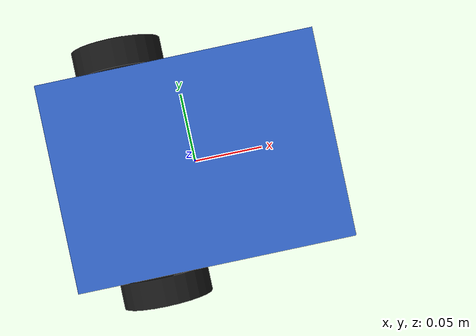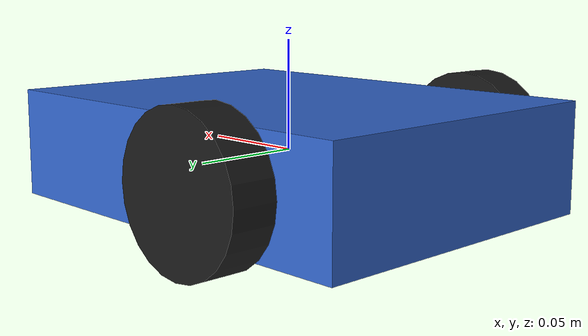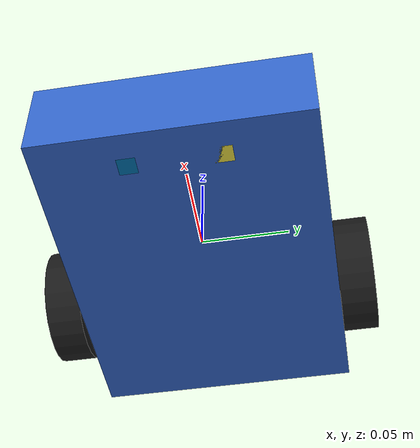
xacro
<?xml version="1.0"?>
<robot xmlns:xacro="http://www.ros.org/wiki/xacro" name="line_follower_v1">
  <!-- V1: Minimal Differential Drive with 2 Downward IR Sensors & L298N Driver -->
  <link name="base_link">
    <visual>
      <geometry><box size="0.20 0.15 0.05"/></geometry>
      <material name="chassis_mat"><color rgba="0.2 0.4 0.8 1.0"/></material>
    </visual>
    <collision>
      <geometry><box size="0.20 0.15 0.05"/></geometry>
    </collision>
    <inertial>
      <mass value="0.8"/>
      <inertia ixx="0.0016" ixy="0" ixz="0" iyy="0.0028" iyz="0" izz="0.0042"/>
    </inertial>
  </link>

  <!-- Left & Right Drive Wheels -->
  <link name="left_wheel">
    <visual>
      <geometry><cylinder radius="0.033" length="0.02"/></geometry>
      <material name="wheel_mat"><color rgba="0.1 0.1 0.1 1.0"/></material>
    </visual>
  </link>
  <joint name="left_wheel_joint" type="continuous">
    <parent link="base_link"/>
    <child link="left_wheel"/>
    <origin xyz="-0.04 0.085 0" rpy="-1.5708 0 0"/>
    <axis xyz="0 0 1"/>
  </joint>

  <link name="right_wheel">
    <visual>
      <geometry><cylinder radius="0.033" length="0.02"/></geometry>
      <material name="wheel_mat"><color rgba="0.1 0.1 0.1 1.0"/></material>
    </visual>
  </link>
  <joint name="right_wheel_joint" type="continuous">
    <parent link="base_link"/>
    <child link="right_wheel"/>
    <origin xyz="-0.04 -0.085 0" rpy="-1.5708 0 0"/>
    <axis xyz="0 0 1"/>
  </joint>

  <!-- 2 Discrete IR Sensor Links -->
  <link name="ir_left_sensor"><visual><geometry><box size="0.01 0.01 0.01"/></geometry></visual></link>
  <joint name="ir_left_joint" type="fixed">
    <parent link="base_link"/>
    <child link="ir_left_sensor"/>
    <origin xyz="0.08 0.025 -0.02" rpy="0 0 0"/>
  </joint>

  <link name="ir_right_sensor"><visual><geometry><box size="0.01 0.01 0.01"/></geometry></visual></link>
  <joint name="ir_right_joint" type="fixed">
    <parent link="base_link"/>
    <child link="ir_right_sensor"/>
    <origin xyz="0.08 -0.025 -0.02" rpy="0 0 0"/>
  </joint>
</robot>
